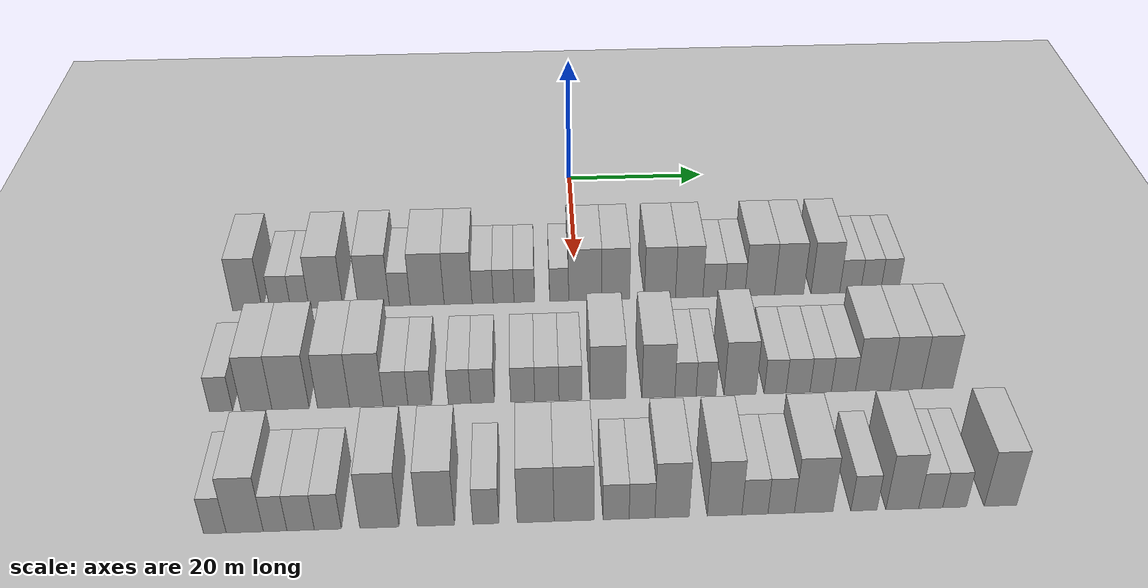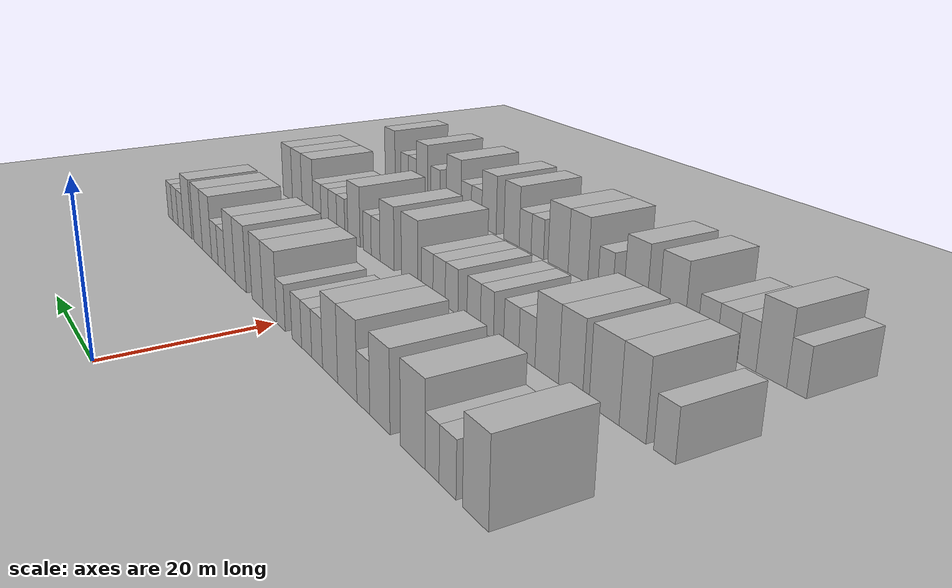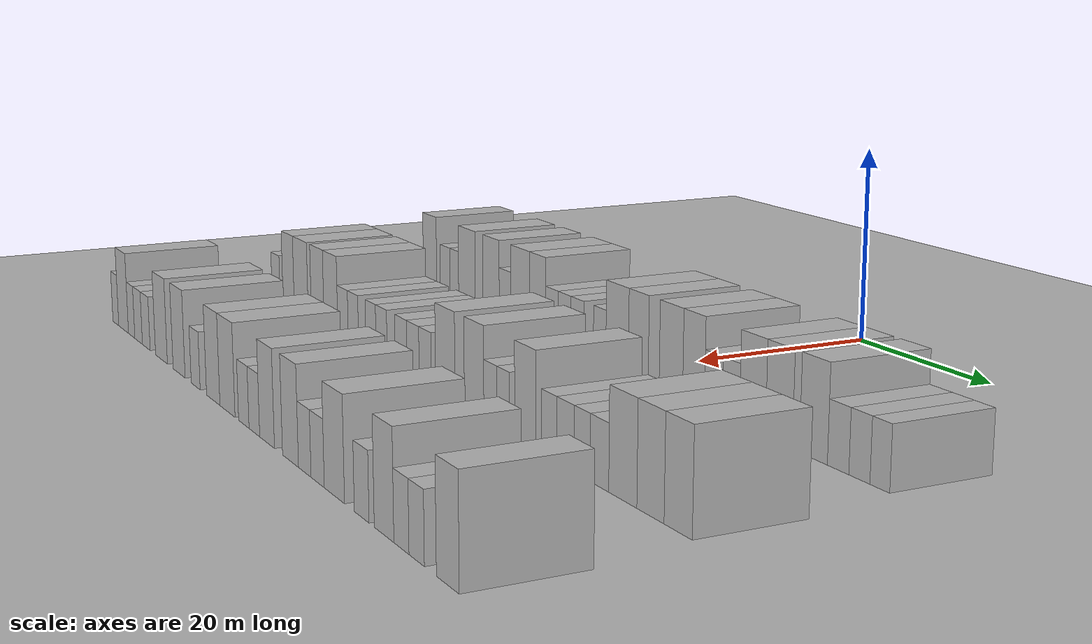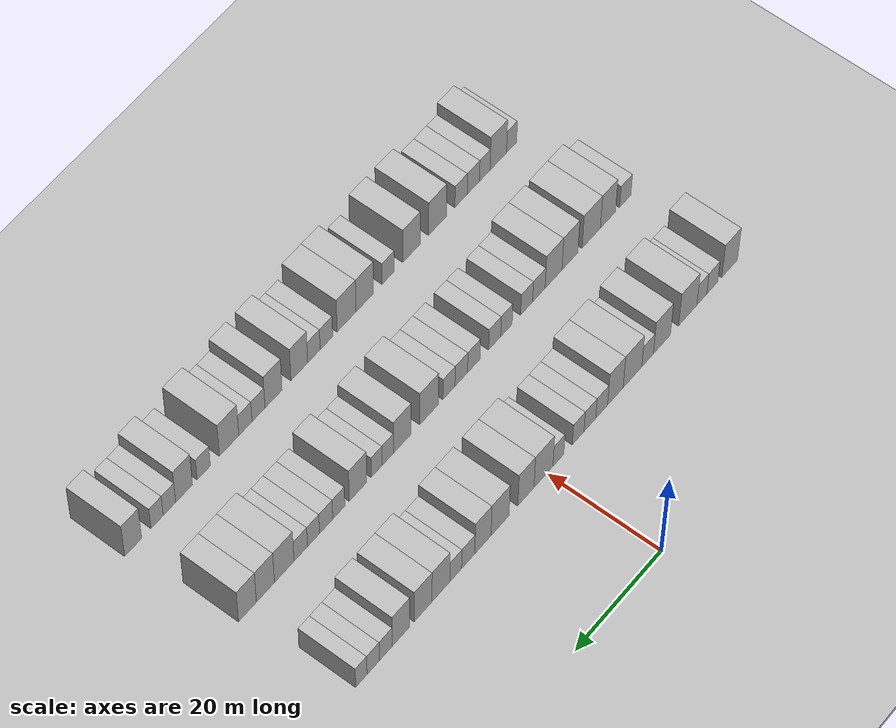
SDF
<sdf version="1.6">
 <world name="default">
  <include><name>ground_plane_1</name><uri>model://HANNAS_ground_plane</uri></include>
  <include>
   <name>ground_plane_2</name>
   <uri>model://HANNAS_ground_plane</uri>
   <pose>100 0 0  0 0 0</pose>
  </include>
  <model name="building_51">
   <static>1</static>
   <pose>25.0000 -43.5825 0 0.000000 0.000000 0.000000</pose>
   <link name="link">
    <pose>0 0 4.50 0 0 0</pose>
    <collision name="collision"><geometry><box><size>10.0000 3.8689 9.0000</size></box></geometry></collision>
    <visual name="visual">
     <cast_shadows>0</cast_shadows>
     <geometry><box><size>10.0000 3.8689 9.0000</size></box></geometry>
     <material>
      <script>
       <uri>model://HANNAS_wall/materials/scripts</uri>
       <uri>model://HANNAS_wall/materials/textures</uri>
       <name>vrc/HANNAS_wall</name>
      </script>
     </material>
    </visual>
   </link>
  </model>
  <model name="building_52">
   <static>1</static>
   <pose>25.0000 -39.2792 0 0.000000 0.000000 0.000000</pose>
   <link name="link">
    <pose>0 0 3.00 0 0 0</pose>
    <collision name="collision"><geometry><box><size>10.0000 2.7376 6.0000</size></box></geometry></collision>
    <visual name="visual">
     <cast_shadows>0</cast_shadows>
     <geometry><box><size>10.0000 2.7376 6.0000</size></box></geometry>
     <material>
      <script>
       <uri>model://HANNAS_wall/materials/scripts</uri>
       <uri>model://HANNAS_wall/materials/textures</uri>
       <name>vrc/HANNAS_wall</name>
      </script>
     </material>
    </visual>
   </link>
  </model>
  <model name="building_53">
   <static>1</static>
   <pose>25.0000 -36.7046 0 0.000000 0.000000 0.000000</pose>
   <link name="link">
    <pose>0 0 3.00 0 0 0</pose>
    <collision name="collision"><geometry><box><size>10.0000 2.4116 6.0000</size></box></geometry></collision>
    <visual name="visual">
     <cast_shadows>0</cast_shadows>
     <geometry><box><size>10.0000 2.4116 6.0000</size></box></geometry>
     <material>
      <script>
       <uri>model://HANNAS_wall/materials/scripts</uri>
       <uri>model://HANNAS_wall/materials/textures</uri>
       <name>vrc/HANNAS_wall</name>
      </script>
     </material>
    </visual>
   </link>
  </model>
  <model name="building_54">
   <static>1</static>
   <pose>25.0000 -33.2688 0 0.000000 0.000000 0.000000</pose>
   <link name="link">
    <pose>0 0 4.50 0 0 0</pose>
    <collision name="collision"><geometry><box><size>10.0000 4.4600 9.0000</size></box></geometry></collision>
    <visual name="visual">
     <cast_shadows>0</cast_shadows>
     <geometry><box><size>10.0000 4.4600 9.0000</size></box></geometry>
     <material>
      <script>
       <uri>model://HANNAS_wall/materials/scripts</uri>
       <uri>model://HANNAS_wall/materials/textures</uri>
       <name>vrc/HANNAS_wall</name>
      </script>
     </material>
    </visual>
   </link>
  </model>
  <model name="building_55">
   <static>1</static>
   <pose>25.0000 -26.9726 0 0.000000 0.000000 0.000000</pose>
   <link name="link">
    <pose>0 0 4.50 0 0 0</pose>
    <collision name="collision"><geometry><box><size>10.0000 4.1324 9.0000</size></box></geometry></collision>
    <visual name="visual">
     <cast_shadows>0</cast_shadows>
     <geometry><box><size>10.0000 4.1324 9.0000</size></box></geometry>
     <material>
      <script>
       <uri>model://HANNAS_wall/materials/scripts</uri>
       <uri>model://HANNAS_wall/materials/textures</uri>
       <name>vrc/HANNAS_wall</name>
      </script>
     </material>
    </visual>
   </link>
  </model>
  <model name="building_56">
   <static>1</static>
   <pose>25.0000 -23.5174 0 0.000000 0.000000 0.000000</pose>
   <link name="link">
    <pose>0 0 3.00 0 0 0</pose>
    <collision name="collision"><geometry><box><size>10.0000 2.7782 6.0000</size></box></geometry></collision>
    <visual name="visual">
     <cast_shadows>0</cast_shadows>
     <geometry><box><size>10.0000 2.7782 6.0000</size></box></geometry>
     <material>
      <script>
       <uri>model://HANNAS_wall/materials/scripts</uri>
       <uri>model://HANNAS_wall/materials/textures</uri>
       <name>vrc/HANNAS_wall</name>
      </script>
     </material>
    </visual>
   </link>
  </model>
  <model name="building_57">
   <static>1</static>
   <pose>25.0000 -19.8978 0 0.000000 0.000000 0.000000</pose>
   <link name="link">
    <pose>0 0 4.50 0 0 0</pose>
    <collision name="collision"><geometry><box><size>10.0000 4.4609 9.0000</size></box></geometry></collision>
    <visual name="visual">
     <cast_shadows>0</cast_shadows>
     <geometry><box><size>10.0000 4.4609 9.0000</size></box></geometry>
     <material>
      <script>
       <uri>model://HANNAS_wall/materials/scripts</uri>
       <uri>model://HANNAS_wall/materials/textures</uri>
       <name>vrc/HANNAS_wall</name>
      </script>
     </material>
    </visual>
   </link>
  </model>
  <model name="building_58">
   <static>1</static>
   <pose>25.0000 -15.8115 0 0.000000 0.000000 0.000000</pose>
   <link name="link">
    <pose>0 0 4.50 0 0 0</pose>
    <collision name="collision"><geometry><box><size>10.0000 3.7118 9.0000</size></box></geometry></collision>
    <visual name="visual">
     <cast_shadows>0</cast_shadows>
     <geometry><box><size>10.0000 3.7118 9.0000</size></box></geometry>
     <material>
      <script>
       <uri>model://HANNAS_wall/materials/scripts</uri>
       <uri>model://HANNAS_wall/materials/textures</uri>
       <name>vrc/HANNAS_wall</name>
      </script>
     </material>
    </visual>
   </link>
  </model>
  <model name="building_59">
   <static>1</static>
   <pose>25.0000 -12.5497 0 0.000000 0.000000 0.000000</pose>
   <link name="link">
    <pose>0 0 3.00 0 0 0</pose>
    <collision name="collision"><geometry><box><size>10.0000 2.8119 6.0000</size></box></geometry></collision>
    <visual name="visual">
     <cast_shadows>0</cast_shadows>
     <geometry><box><size>10.0000 2.8119 6.0000</size></box></geometry>
     <material>
      <script>
       <uri>model://HANNAS_wall/materials/scripts</uri>
       <uri>model://HANNAS_wall/materials/textures</uri>
       <name>vrc/HANNAS_wall</name>
      </script>
     </material>
    </visual>
   </link>
  </model>
  <model name="building_60">
   <static>1</static>
   <pose>25.0000 -9.7638 0 0.000000 0.000000 0.000000</pose>
   <link name="link">
    <pose>0 0 3.00 0 0 0</pose>
    <collision name="collision"><geometry><box><size>10.0000 2.7600 6.0000</size></box></geometry></collision>
    <visual name="visual">
     <cast_shadows>0</cast_shadows>
     <geometry><box><size>10.0000 2.7600 6.0000</size></box></geometry>
     <material>
      <script>
       <uri>model://HANNAS_wall/materials/scripts</uri>
       <uri>model://HANNAS_wall/materials/textures</uri>
       <name>vrc/HANNAS_wall</name>
      </script>
     </material>
    </visual>
   </link>
  </model>
  <model name="building_61">
   <static>1</static>
   <pose>25.0000 -7.0127 0 0.000000 0.000000 0.000000</pose>
   <link name="link">
    <pose>0 0 3.00 0 0 0</pose>
    <collision name="collision"><geometry><box><size>10.0000 2.7423 6.0000</size></box></geometry></collision>
    <visual name="visual">
     <cast_shadows>0</cast_shadows>
     <geometry><box><size>10.0000 2.7423 6.0000</size></box></geometry>
     <material>
      <script>
       <uri>model://HANNAS_wall/materials/scripts</uri>
       <uri>model://HANNAS_wall/materials/textures</uri>
       <name>vrc/HANNAS_wall</name>
      </script>
     </material>
    </visual>
   </link>
  </model>
  <model name="building_62">
   <static>1</static>
   <pose>25.0000 -2.3750 0 0.000000 0.000000 0.000000</pose>
   <link name="link">
    <pose>0 0 3.00 0 0 0</pose>
    <collision name="collision"><geometry><box><size>10.0000 2.5332 6.0000</size></box></geometry></collision>
    <visual name="visual">
     <cast_shadows>0</cast_shadows>
     <geometry><box><size>10.0000 2.5332 6.0000</size></box></geometry>
     <material>
      <script>
       <uri>model://HANNAS_wall/materials/scripts</uri>
       <uri>model://HANNAS_wall/materials/textures</uri>
       <name>vrc/HANNAS_wall</name>
      </script>
     </material>
    </visual>
   </link>
  </model>
  <model name="building_63">
   <static>1</static>
   <pose>25.0000 1.0939 0 0.000000 0.000000 0.000000</pose>
   <link name="link">
    <pose>0 0 4.50 0 0 0</pose>
    <collision name="collision"><geometry><box><size>10.0000 4.4045 9.0000</size></box></geometry></collision>
    <visual name="visual">
     <cast_shadows>0</cast_shadows>
     <geometry><box><size>10.0000 4.4045 9.0000</size></box></geometry>
     <material>
      <script>
       <uri>model://HANNAS_wall/materials/scripts</uri>
       <uri>model://HANNAS_wall/materials/textures</uri>
       <name>vrc/HANNAS_wall</name>
      </script>
     </material>
    </visual>
   </link>
  </model>
  <model name="building_64">
   <static>1</static>
   <pose>25.0000 5.1613 0 0.000000 0.000000 0.000000</pose>
   <link name="link">
    <pose>0 0 4.50 0 0 0</pose>
    <collision name="collision"><geometry><box><size>10.0000 3.7302 9.0000</size></box></geometry></collision>
    <visual name="visual">
     <cast_shadows>0</cast_shadows>
     <geometry><box><size>10.0000 3.7302 9.0000</size></box></geometry>
     <material>
      <script>
       <uri>model://HANNAS_wall/materials/scripts</uri>
       <uri>model://HANNAS_wall/materials/textures</uri>
       <name>vrc/HANNAS_wall</name>
      </script>
     </material>
    </visual>
   </link>
  </model>
  <model name="building_65">
   <static>1</static>
   <pose>25.0000 11.0994 0 0.000000 0.000000 0.000000</pose>
   <link name="link">
    <pose>0 0 4.50 0 0 0</pose>
    <collision name="collision"><geometry><box><size>10.0000 4.1461 9.0000</size></box></geometry></collision>
    <visual name="visual">
     <cast_shadows>0</cast_shadows>
     <geometry><box><size>10.0000 4.1461 9.0000</size></box></geometry>
     <material>
      <script>
       <uri>model://HANNAS_wall/materials/scripts</uri>
       <uri>model://HANNAS_wall/materials/textures</uri>
       <name>vrc/HANNAS_wall</name>
      </script>
     </material>
    </visual>
   </link>
  </model>
  <model name="building_66">
   <static>1</static>
   <pose>25.0000 15.0193 0 0.000000 0.000000 0.000000</pose>
   <link name="link">
    <pose>0 0 4.50 0 0 0</pose>
    <collision name="collision"><geometry><box><size>10.0000 3.6936 9.0000</size></box></geometry></collision>
    <visual name="visual">
     <cast_shadows>0</cast_shadows>
     <geometry><box><size>10.0000 3.6936 9.0000</size></box></geometry>
     <material>
      <script>
       <uri>model://HANNAS_wall/materials/scripts</uri>
       <uri>model://HANNAS_wall/materials/textures</uri>
       <name>vrc/HANNAS_wall</name>
      </script>
     </material>
    </visual>
   </link>
  </model>
  <model name="building_67">
   <static>1</static>
   <pose>25.0000 18.3414 0 0.000000 0.000000 0.000000</pose>
   <link name="link">
    <pose>0 0 3.00 0 0 0</pose>
    <collision name="collision"><geometry><box><size>10.0000 2.9506 6.0000</size></box></geometry></collision>
    <visual name="visual">
     <cast_shadows>0</cast_shadows>
     <geometry><box><size>10.0000 2.9506 6.0000</size></box></geometry>
     <material>
      <script>
       <uri>model://HANNAS_wall/materials/scripts</uri>
       <uri>model://HANNAS_wall/materials/textures</uri>
       <name>vrc/HANNAS_wall</name>
      </script>
     </material>
    </visual>
   </link>
  </model>
  <model name="building_68">
   <static>1</static>
   <pose>25.0000 21.1719 0 0.000000 0.000000 0.000000</pose>
   <link name="link">
    <pose>0 0 3.00 0 0 0</pose>
    <collision name="collision"><geometry><box><size>10.0000 2.7105 6.0000</size></box></geometry></collision>
    <visual name="visual">
     <cast_shadows>0</cast_shadows>
     <geometry><box><size>10.0000 2.7105 6.0000</size></box></geometry>
     <material>
      <script>
       <uri>model://HANNAS_wall/materials/scripts</uri>
       <uri>model://HANNAS_wall/materials/textures</uri>
       <name>vrc/HANNAS_wall</name>
      </script>
     </material>
    </visual>
   </link>
  </model>
  <model name="building_69">
   <static>1</static>
   <pose>25.0000 24.5188 0 0.000000 0.000000 0.000000</pose>
   <link name="link">
    <pose>0 0 4.50 0 0 0</pose>
    <collision name="collision"><geometry><box><size>10.0000 3.9832 9.0000</size></box></geometry></collision>
    <visual name="visual">
     <cast_shadows>0</cast_shadows>
     <geometry><box><size>10.0000 3.9832 9.0000</size></box></geometry>
     <material>
      <script>
       <uri>model://HANNAS_wall/materials/scripts</uri>
       <uri>model://HANNAS_wall/materials/textures</uri>
       <name>vrc/HANNAS_wall</name>
      </script>
     </material>
    </visual>
   </link>
  </model>
  <model name="building_70">
   <static>1</static>
   <pose>25.0000 28.4812 0 0.000000 0.000000 0.000000</pose>
   <link name="link">
    <pose>0 0 4.50 0 0 0</pose>
    <collision name="collision"><geometry><box><size>10.0000 3.9416 9.0000</size></box></geometry></collision>
    <visual name="visual">
     <cast_shadows>0</cast_shadows>
     <geometry><box><size>10.0000 3.9416 9.0000</size></box></geometry>
     <material>
      <script>
       <uri>model://HANNAS_wall/materials/scripts</uri>
       <uri>model://HANNAS_wall/materials/textures</uri>
       <name>vrc/HANNAS_wall</name>
      </script>
     </material>
    </visual>
   </link>
  </model>
  <model name="building_71">
   <static>1</static>
   <pose>25.0000 33.3857 0 0.000000 0.000000 0.000000</pose>
   <link name="link">
    <pose>0 0 4.50 0 0 0</pose>
    <collision name="collision"><geometry><box><size>10.0000 3.8675 9.0000</size></box></geometry></collision>
    <visual name="visual">
     <cast_shadows>0</cast_shadows>
     <geometry><box><size>10.0000 3.8675 9.0000</size></box></geometry>
     <material>
      <script>
       <uri>model://HANNAS_wall/materials/scripts</uri>
       <uri>model://HANNAS_wall/materials/textures</uri>
       <name>vrc/HANNAS_wall</name>
      </script>
     </material>
    </visual>
   </link>
  </model>
  <model name="building_72">
   <static>1</static>
   <pose>25.0000 36.7417 0 0.000000 0.000000 0.000000</pose>
   <link name="link">
    <pose>0 0 3.00 0 0 0</pose>
    <collision name="collision"><geometry><box><size>10.0000 2.8445 6.0000</size></box></geometry></collision>
    <visual name="visual">
     <cast_shadows>0</cast_shadows>
     <geometry><box><size>10.0000 2.8445 6.0000</size></box></geometry>
     <material>
      <script>
       <uri>model://HANNAS_wall/materials/scripts</uri>
       <uri>model://HANNAS_wall/materials/textures</uri>
       <name>vrc/HANNAS_wall</name>
      </script>
     </material>
    </visual>
   </link>
  </model>
  <model name="building_73">
   <static>1</static>
   <pose>25.0000 39.5200 0 0.000000 0.000000 0.000000</pose>
   <link name="link">
    <pose>0 0 3.00 0 0 0</pose>
    <collision name="collision"><geometry><box><size>10.0000 2.7121 6.0000</size></box></geometry></collision>
    <visual name="visual">
     <cast_shadows>0</cast_shadows>
     <geometry><box><size>10.0000 2.7121 6.0000</size></box></geometry>
     <material>
      <script>
       <uri>model://HANNAS_wall/materials/scripts</uri>
       <uri>model://HANNAS_wall/materials/textures</uri>
       <name>vrc/HANNAS_wall</name>
      </script>
     </material>
    </visual>
   </link>
  </model>
  <model name="building_74">
   <static>1</static>
   <pose>25.0000 42.1110 0 0.000000 0.000000 0.000000</pose>
   <link name="link">
    <pose>0 0 3.00 0 0 0</pose>
    <collision name="collision"><geometry><box><size>10.0000 2.4699 6.0000</size></box></geometry></collision>
    <visual name="visual">
     <cast_shadows>0</cast_shadows>
     <geometry><box><size>10.0000 2.4699 6.0000</size></box></geometry>
     <material>
      <script>
       <uri>model://HANNAS_wall/materials/scripts</uri>
       <uri>model://HANNAS_wall/materials/textures</uri>
       <name>vrc/HANNAS_wall</name>
      </script>
     </material>
    </visual>
   </link>
  </model>
  <model name="building_165">
   <static>1</static>
   <pose>44.0000 -43.6014 0 0.000000 0.000000 0.000000</pose>
   <link name="link">
    <pose>0 0 3.00 0 0 0</pose>
    <collision name="collision"><geometry><box><size>10.0000 2.7723 6.0000</size></box></geometry></collision>
    <visual name="visual">
     <cast_shadows>0</cast_shadows>
     <geometry><box><size>10.0000 2.7723 6.0000</size></box></geometry>
     <material>
      <script>
       <uri>model://HANNAS_wall/materials/scripts</uri>
       <uri>model://HANNAS_wall/materials/textures</uri>
       <name>vrc/HANNAS_wall</name>
      </script>
     </material>
    </visual>
   </link>
  </model>
  <model name="building_166">
   <static>1</static>
   <pose>44.0000 -39.3659 0 0.000000 0.000000 0.000000</pose>
   <link name="link">
    <pose>0 0 4.50 0 0 0</pose>
    <collision name="collision"><geometry><box><size>10.0000 3.6986 9.0000</size></box></geometry></collision>
    <visual name="visual">
     <cast_shadows>0</cast_shadows>
     <geometry><box><size>10.0000 3.6986 9.0000</size></box></geometry>
     <material>
      <script>
       <uri>model://HANNAS_wall/materials/scripts</uri>
       <uri>model://HANNAS_wall/materials/textures</uri>
       <name>vrc/HANNAS_wall</name>
      </script>
     </material>
    </visual>
   </link>
  </model>
  <model name="building_167">
   <static>1</static>
   <pose>44.0000 -35.2908 0 0.000000 0.000000 0.000000</pose>
   <link name="link">
    <pose>0 0 4.50 0 0 0</pose>
    <collision name="collision"><geometry><box><size>10.0000 4.4516 9.0000</size></box></geometry></collision>
    <visual name="visual">
     <cast_shadows>0</cast_shadows>
     <geometry><box><size>10.0000 4.4516 9.0000</size></box></geometry>
     <material>
      <script>
       <uri>model://HANNAS_wall/materials/scripts</uri>
       <uri>model://HANNAS_wall/materials/textures</uri>
       <name>vrc/HANNAS_wall</name>
      </script>
     </material>
    </visual>
   </link>
  </model>
  <model name="building_168">
   <static>1</static>
   <pose>44.0000 -30.1331 0 0.000000 0.000000 0.000000</pose>
   <link name="link">
    <pose>0 0 4.50 0 0 0</pose>
    <collision name="collision"><geometry><box><size>10.0000 3.8639 9.0000</size></box></geometry></collision>
    <visual name="visual">
     <cast_shadows>0</cast_shadows>
     <geometry><box><size>10.0000 3.8639 9.0000</size></box></geometry>
     <material>
      <script>
       <uri>model://HANNAS_wall/materials/scripts</uri>
       <uri>model://HANNAS_wall/materials/textures</uri>
       <name>vrc/HANNAS_wall</name>
      </script>
     </material>
    </visual>
   </link>
  </model>
  <model name="building_169">
   <static>1</static>
   <pose>44.0000 -26.1738 0 0.000000 0.000000 0.000000</pose>
   <link name="link">
    <pose>0 0 4.50 0 0 0</pose>
    <collision name="collision"><geometry><box><size>10.0000 4.0548 9.0000</size></box></geometry></collision>
    <visual name="visual">
     <cast_shadows>0</cast_shadows>
     <geometry><box><size>10.0000 4.0548 9.0000</size></box></geometry>
     <material>
      <script>
       <uri>model://HANNAS_wall/materials/scripts</uri>
       <uri>model://HANNAS_wall/materials/textures</uri>
       <name>vrc/HANNAS_wall</name>
      </script>
     </material>
    </visual>
   </link>
  </model>
  <model name="building_170">
   <static>1</static>
   <pose>44.0000 -22.6644 0 0.000000 0.000000 0.000000</pose>
   <link name="link">
    <pose>0 0 3.00 0 0 0</pose>
    <collision name="collision"><geometry><box><size>10.0000 2.9638 6.0000</size></box></geometry></collision>
    <visual name="visual">
     <cast_shadows>0</cast_shadows>
     <geometry><box><size>10.0000 2.9638 6.0000</size></box></geometry>
     <material>
      <script>
       <uri>model://HANNAS_wall/materials/scripts</uri>
       <uri>model://HANNAS_wall/materials/textures</uri>
       <name>vrc/HANNAS_wall</name>
      </script>
     </material>
    </visual>
   </link>
  </model>
  <model name="building_171">
   <static>1</static>
   <pose>44.0000 -19.7495 0 0.000000 0.000000 0.000000</pose>
   <link name="link">
    <pose>0 0 3.00 0 0 0</pose>
    <collision name="collision"><geometry><box><size>10.0000 2.8661 6.0000</size></box></geometry></collision>
    <visual name="visual">
     <cast_shadows>0</cast_shadows>
     <geometry><box><size>10.0000 2.8661 6.0000</size></box></geometry>
     <material>
      <script>
       <uri>model://HANNAS_wall/materials/scripts</uri>
       <uri>model://HANNAS_wall/materials/textures</uri>
       <name>vrc/HANNAS_wall</name>
      </script>
     </material>
    </visual>
   </link>
  </model>
  <model name="building_172">
   <static>1</static>
   <pose>44.0000 -14.9637 0 0.000000 0.000000 0.000000</pose>
   <link name="link">
    <pose>0 0 3.00 0 0 0</pose>
    <collision name="collision"><geometry><box><size>10.0000 2.7054 6.0000</size></box></geometry></collision>
    <visual name="visual">
     <cast_shadows>0</cast_shadows>
     <geometry><box><size>10.0000 2.7054 6.0000</size></box></geometry>
     <material>
      <script>
       <uri>model://HANNAS_wall/materials/scripts</uri>
       <uri>model://HANNAS_wall/materials/textures</uri>
       <name>vrc/HANNAS_wall</name>
      </script>
     </material>
    </visual>
   </link>
  </model>
  <model name="building_173">
   <static>1</static>
   <pose>44.0000 -12.1820 0 0.000000 0.000000 0.000000</pose>
   <link name="link">
    <pose>0 0 3.00 0 0 0</pose>
    <collision name="collision"><geometry><box><size>10.0000 2.8579 6.0000</size></box></geometry></collision>
    <visual name="visual">
     <cast_shadows>0</cast_shadows>
     <geometry><box><size>10.0000 2.8579 6.0000</size></box></geometry>
     <material>
      <script>
       <uri>model://HANNAS_wall/materials/scripts</uri>
       <uri>model://HANNAS_wall/materials/textures</uri>
       <name>vrc/HANNAS_wall</name>
      </script>
     </material>
    </visual>
   </link>
  </model>
  <model name="building_174">
   <static>1</static>
   <pose>44.0000 -7.3008 0 0.000000 0.000000 0.000000</pose>
   <link name="link">
    <pose>0 0 3.00 0 0 0</pose>
    <collision name="collision"><geometry><box><size>10.0000 2.9045 6.0000</size></box></geometry></collision>
    <visual name="visual">
     <cast_shadows>0</cast_shadows>
     <geometry><box><size>10.0000 2.9045 6.0000</size></box></geometry>
     <material>
      <script>
       <uri>model://HANNAS_wall/materials/scripts</uri>
       <uri>model://HANNAS_wall/materials/textures</uri>
       <name>vrc/HANNAS_wall</name>
      </script>
     </material>
    </visual>
   </link>
  </model>
  <model name="building_175">
   <static>1</static>
   <pose>44.0000 -4.3817 0 0.000000 0.000000 0.000000</pose>
   <link name="link">
    <pose>0 0 3.00 0 0 0</pose>
    <collision name="collision"><geometry><box><size>10.0000 2.9337 6.0000</size></box></geometry></collision>
    <visual name="visual">
     <cast_shadows>0</cast_shadows>
     <geometry><box><size>10.0000 2.9337 6.0000</size></box></geometry>
     <material>
      <script>
       <uri>model://HANNAS_wall/materials/scripts</uri>
       <uri>model://HANNAS_wall/materials/textures</uri>
       <name>vrc/HANNAS_wall</name>
      </script>
     </material>
    </visual>
   </link>
  </model>
  <model name="building_176">
   <static>1</static>
   <pose>44.0000 -1.5160 0 0.000000 0.000000 0.000000</pose>
   <link name="link">
    <pose>0 0 3.00 0 0 0</pose>
    <collision name="collision"><geometry><box><size>10.0000 2.7977 6.0000</size></box></geometry></collision>
    <visual name="visual">
     <cast_shadows>0</cast_shadows>
     <geometry><box><size>10.0000 2.7977 6.0000</size></box></geometry>
     <material>
      <script>
       <uri>model://HANNAS_wall/materials/scripts</uri>
       <uri>model://HANNAS_wall/materials/textures</uri>
       <name>vrc/HANNAS_wall</name>
      </script>
     </material>
    </visual>
   </link>
  </model>
  <model name="building_177">
   <static>1</static>
   <pose>44.0000 3.0311 0 0.000000 0.000000 0.000000</pose>
   <link name="link">
    <pose>0 0 4.50 0 0 0</pose>
    <collision name="collision"><geometry><box><size>10.0000 4.2965 9.0000</size></box></geometry></collision>
    <visual name="visual">
     <cast_shadows>0</cast_shadows>
     <geometry><box><size>10.0000 4.2965 9.0000</size></box></geometry>
     <material>
      <script>
       <uri>model://HANNAS_wall/materials/scripts</uri>
       <uri>model://HANNAS_wall/materials/textures</uri>
       <name>vrc/HANNAS_wall</name>
      </script>
     </material>
    </visual>
   </link>
  </model>
  <model name="building_178">
   <static>1</static>
   <pose>44.0000 9.1933 0 0.000000 0.000000 0.000000</pose>
   <link name="link">
    <pose>0 0 4.50 0 0 0</pose>
    <collision name="collision"><geometry><box><size>10.0000 4.0280 9.0000</size></box></geometry></collision>
    <visual name="visual">
     <cast_shadows>0</cast_shadows>
     <geometry><box><size>10.0000 4.0280 9.0000</size></box></geometry>
     <material>
      <script>
       <uri>model://HANNAS_wall/materials/scripts</uri>
       <uri>model://HANNAS_wall/materials/textures</uri>
       <name>vrc/HANNAS_wall</name>
      </script>
     </material>
    </visual>
   </link>
  </model>
  <model name="building_179">
   <static>1</static>
   <pose>44.0000 12.5061 0 0.000000 0.000000 0.000000</pose>
   <link name="link">
    <pose>0 0 3.00 0 0 0</pose>
    <collision name="collision"><geometry><box><size>10.0000 2.5975 6.0000</size></box></geometry></collision>
    <visual name="visual">
     <cast_shadows>0</cast_shadows>
     <geometry><box><size>10.0000 2.5975 6.0000</size></box></geometry>
     <material>
      <script>
       <uri>model://HANNAS_wall/materials/scripts</uri>
       <uri>model://HANNAS_wall/materials/textures</uri>
       <name>vrc/HANNAS_wall</name>
      </script>
     </material>
    </visual>
   </link>
  </model>
  <model name="building_180">
   <static>1</static>
   <pose>44.0000 15.0234 0 0.000000 0.000000 0.000000</pose>
   <link name="link">
    <pose>0 0 3.00 0 0 0</pose>
    <collision name="collision"><geometry><box><size>10.0000 2.4371 6.0000</size></box></geometry></collision>
    <visual name="visual">
     <cast_shadows>0</cast_shadows>
     <geometry><box><size>10.0000 2.4371 6.0000</size></box></geometry>
     <material>
      <script>
       <uri>model://HANNAS_wall/materials/scripts</uri>
       <uri>model://HANNAS_wall/materials/textures</uri>
       <name>vrc/HANNAS_wall</name>
      </script>
     </material>
    </visual>
   </link>
  </model>
  <model name="building_181">
   <static>1</static>
   <pose>44.0000 19.2070 0 0.000000 0.000000 0.000000</pose>
   <link name="link">
    <pose>0 0 4.50 0 0 0</pose>
    <collision name="collision"><geometry><box><size>10.0000 3.9302 9.0000</size></box></geometry></collision>
    <visual name="visual">
     <cast_shadows>0</cast_shadows>
     <geometry><box><size>10.0000 3.9302 9.0000</size></box></geometry>
     <material>
      <script>
       <uri>model://HANNAS_wall/materials/scripts</uri>
       <uri>model://HANNAS_wall/materials/textures</uri>
       <name>vrc/HANNAS_wall</name>
      </script>
     </material>
    </visual>
   </link>
  </model>
  <model name="building_182">
   <static>1</static>
   <pose>44.0000 23.5133 0 0.000000 0.000000 0.000000</pose>
   <link name="link">
    <pose>0 0 3.00 0 0 0</pose>
    <collision name="collision"><geometry><box><size>10.0000 2.6823 6.0000</size></box></geometry></collision>
    <visual name="visual">
     <cast_shadows>0</cast_shadows>
     <geometry><box><size>10.0000 2.6823 6.0000</size></box></geometry>
     <material>
      <script>
       <uri>model://HANNAS_wall/materials/scripts</uri>
       <uri>model://HANNAS_wall/materials/textures</uri>
       <name>vrc/HANNAS_wall</name>
      </script>
     </material>
    </visual>
   </link>
  </model>
  <model name="building_183">
   <static>1</static>
   <pose>44.0000 26.3261 0 0.000000 0.000000 0.000000</pose>
   <link name="link">
    <pose>0 0 3.00 0 0 0</pose>
    <collision name="collision"><geometry><box><size>10.0000 2.9435 6.0000</size></box></geometry></collision>
    <visual name="visual">
     <cast_shadows>0</cast_shadows>
     <geometry><box><size>10.0000 2.9435 6.0000</size></box></geometry>
     <material>
      <script>
       <uri>model://HANNAS_wall/materials/scripts</uri>
       <uri>model://HANNAS_wall/materials/textures</uri>
       <name>vrc/HANNAS_wall</name>
      </script>
     </material>
    </visual>
   </link>
  </model>
  <model name="building_184">
   <static>1</static>
   <pose>44.0000 29.1222 0 0.000000 0.000000 0.000000</pose>
   <link name="link">
    <pose>0 0 3.00 0 0 0</pose>
    <collision name="collision"><geometry><box><size>10.0000 2.6488 6.0000</size></box></geometry></collision>
    <visual name="visual">
     <cast_shadows>0</cast_shadows>
     <geometry><box><size>10.0000 2.6488 6.0000</size></box></geometry>
     <material>
      <script>
       <uri>model://HANNAS_wall/materials/scripts</uri>
       <uri>model://HANNAS_wall/materials/textures</uri>
       <name>vrc/HANNAS_wall</name>
      </script>
     </material>
    </visual>
   </link>
  </model>
  <model name="building_185">
   <static>1</static>
   <pose>44.0000 31.9396 0 0.000000 0.000000 0.000000</pose>
   <link name="link">
    <pose>0 0 3.00 0 0 0</pose>
    <collision name="collision"><geometry><box><size>10.0000 2.9860 6.0000</size></box></geometry></collision>
    <visual name="visual">
     <cast_shadows>0</cast_shadows>
     <geometry><box><size>10.0000 2.9860 6.0000</size></box></geometry>
     <material>
      <script>
       <uri>model://HANNAS_wall/materials/scripts</uri>
       <uri>model://HANNAS_wall/materials/textures</uri>
       <name>vrc/HANNAS_wall</name>
      </script>
     </material>
    </visual>
   </link>
  </model>
  <model name="building_186">
   <static>1</static>
   <pose>44.0000 35.5728 0 0.000000 0.000000 0.000000</pose>
   <link name="link">
    <pose>0 0 4.50 0 0 0</pose>
    <collision name="collision"><geometry><box><size>10.0000 4.2803 9.0000</size></box></geometry></collision>
    <visual name="visual">
     <cast_shadows>0</cast_shadows>
     <geometry><box><size>10.0000 4.2803 9.0000</size></box></geometry>
     <material>
      <script>
       <uri>model://HANNAS_wall/materials/scripts</uri>
       <uri>model://HANNAS_wall/materials/textures</uri>
       <name>vrc/HANNAS_wall</name>
      </script>
     </material>
    </visual>
   </link>
  </model>
  <model name="building_187">
   <static>1</static>
   <pose>44.0000 39.6772 0 0.000000 0.000000 0.000000</pose>
   <link name="link">
    <pose>0 0 4.50 0 0 0</pose>
    <collision name="collision"><geometry><box><size>10.0000 3.9285 9.0000</size></box></geometry></collision>
    <visual name="visual">
     <cast_shadows>0</cast_shadows>
     <geometry><box><size>10.0000 3.9285 9.0000</size></box></geometry>
     <material>
      <script>
       <uri>model://HANNAS_wall/materials/scripts</uri>
       <uri>model://HANNAS_wall/materials/textures</uri>
       <name>vrc/HANNAS_wall</name>
      </script>
     </material>
    </visual>
   </link>
  </model>
  <model name="building_188">
   <static>1</static>
   <pose>44.0000 43.5784 0 0.000000 0.000000 0.000000</pose>
   <link name="link">
    <pose>0 0 4.50 0 0 0</pose>
    <collision name="collision"><geometry><box><size>10.0000 3.8738 9.0000</size></box></geometry></collision>
    <visual name="visual">
     <cast_shadows>0</cast_shadows>
     <geometry><box><size>10.0000 3.8738 9.0000</size></box></geometry>
     <material>
      <script>
       <uri>model://HANNAS_wall/materials/scripts</uri>
       <uri>model://HANNAS_wall/materials/textures</uri>
       <name>vrc/HANNAS_wall</name>
      </script>
     </material>
    </visual>
   </link>
  </model>
  <model name="building_280">
   <static>1</static>
   <pose>63.0000 -40.8225 0 0.000000 0.000000 0.000000</pose>
   <link name="link">
    <pose>0 0 3.00 0 0 0</pose>
    <collision name="collision"><geometry><box><size>10.0000 2.4393 6.0000</size></box></geometry></collision>
    <visual name="visual">
     <cast_shadows>0</cast_shadows>
     <geometry><box><size>10.0000 2.4393 6.0000</size></box></geometry>
     <material>
      <script>
       <uri>model://HANNAS_wall/materials/scripts</uri>
       <uri>model://HANNAS_wall/materials/textures</uri>
       <name>vrc/HANNAS_wall</name>
      </script>
     </material>
    </visual>
   </link>
  </model>
  <model name="building_281">
   <static>1</static>
   <pose>63.0000 -37.6006 0 0.000000 0.000000 0.000000</pose>
   <link name="link">
    <pose>0 0 4.50 0 0 0</pose>
    <collision name="collision"><geometry><box><size>10.0000 4.0046 9.0000</size></box></geometry></collision>
    <visual name="visual">
     <cast_shadows>0</cast_shadows>
     <geometry><box><size>10.0000 4.0046 9.0000</size></box></geometry>
     <material>
      <script>
       <uri>model://HANNAS_wall/materials/scripts</uri>
       <uri>model://HANNAS_wall/materials/textures</uri>
       <name>vrc/HANNAS_wall</name>
      </script>
     </material>
    </visual>
   </link>
  </model>
  <model name="building_282">
   <static>1</static>
   <pose>63.0000 -34.3244 0 0.000000 0.000000 0.000000</pose>
   <link name="link">
    <pose>0 0 3.00 0 0 0</pose>
    <collision name="collision"><geometry><box><size>10.0000 2.5477 6.0000</size></box></geometry></collision>
    <visual name="visual">
     <cast_shadows>0</cast_shadows>
     <geometry><box><size>10.0000 2.5477 6.0000</size></box></geometry>
     <material>
      <script>
       <uri>model://HANNAS_wall/materials/scripts</uri>
       <uri>model://HANNAS_wall/materials/textures</uri>
       <name>vrc/HANNAS_wall</name>
      </script>
     </material>
    </visual>
   </link>
  </model>
  <model name="building_283">
   <static>1</static>
   <pose>63.0000 -31.5729 0 0.000000 0.000000 0.000000</pose>
   <link name="link">
    <pose>0 0 3.00 0 0 0</pose>
    <collision name="collision"><geometry><box><size>10.0000 2.9552 6.0000</size></box></geometry></collision>
    <visual name="visual">
     <cast_shadows>0</cast_shadows>
     <geometry><box><size>10.0000 2.9552 6.0000</size></box></geometry>
     <material>
      <script>
       <uri>model://HANNAS_wall/materials/scripts</uri>
       <uri>model://HANNAS_wall/materials/textures</uri>
       <name>vrc/HANNAS_wall</name>
      </script>
     </material>
    </visual>
   </link>
  </model>
  <model name="building_284">
   <static>1</static>
   <pose>63.0000 -28.6274 0 0.000000 0.000000 0.000000</pose>
   <link name="link">
    <pose>0 0 3.00 0 0 0</pose>
    <collision name="collision"><geometry><box><size>10.0000 2.9360 6.0000</size></box></geometry></collision>
    <visual name="visual">
     <cast_shadows>0</cast_shadows>
     <geometry><box><size>10.0000 2.9360 6.0000</size></box></geometry>
     <material>
      <script>
       <uri>model://HANNAS_wall/materials/scripts</uri>
       <uri>model://HANNAS_wall/materials/textures</uri>
       <name>vrc/HANNAS_wall</name>
      </script>
     </material>
    </visual>
   </link>
  </model>
  <model name="building_285">
   <static>1</static>
   <pose>63.0000 -23.0329 0 0.000000 0.000000 0.000000</pose>
   <link name="link">
    <pose>0 0 4.50 0 0 0</pose>
    <collision name="collision"><geometry><box><size>10.0000 4.2528 9.0000</size></box></geometry></collision>
    <visual name="visual">
     <cast_shadows>0</cast_shadows>
     <geometry><box><size>10.0000 4.2528 9.0000</size></box></geometry>
     <material>
      <script>
       <uri>model://HANNAS_wall/materials/scripts</uri>
       <uri>model://HANNAS_wall/materials/textures</uri>
       <name>vrc/HANNAS_wall</name>
      </script>
     </material>
    </visual>
   </link>
  </model>
  <model name="building_286">
   <static>1</static>
   <pose>63.0000 -16.8805 0 0.000000 0.000000 0.000000</pose>
   <link name="link">
    <pose>0 0 4.50 0 0 0</pose>
    <collision name="collision"><geometry><box><size>10.0000 4.0520 9.0000</size></box></geometry></collision>
    <visual name="visual">
     <cast_shadows>0</cast_shadows>
     <geometry><box><size>10.0000 4.0520 9.0000</size></box></geometry>
     <material>
      <script>
       <uri>model://HANNAS_wall/materials/scripts</uri>
       <uri>model://HANNAS_wall/materials/textures</uri>
       <name>vrc/HANNAS_wall</name>
      </script>
     </material>
    </visual>
   </link>
  </model>
  <model name="building_287">
   <static>1</static>
   <pose>63.0000 -11.4254 0 0.000000 0.000000 0.000000</pose>
   <link name="link">
    <pose>0 0 3.00 0 0 0</pose>
    <collision name="collision"><geometry><box><size>10.0000 2.8584 6.0000</size></box></geometry></collision>
    <visual name="visual">
     <cast_shadows>0</cast_shadows>
     <geometry><box><size>10.0000 2.8584 6.0000</size></box></geometry>
     <material>
      <script>
       <uri>model://HANNAS_wall/materials/scripts</uri>
       <uri>model://HANNAS_wall/materials/textures</uri>
       <name>vrc/HANNAS_wall</name>
      </script>
     </material>
    </visual>
   </link>
  </model>
  <model name="building_288">
   <static>1</static>
   <pose>63.0000 -5.9745 0 0.000000 0.000000 0.000000</pose>
   <link name="link">
    <pose>0 0 4.50 0 0 0</pose>
    <collision name="collision"><geometry><box><size>10.0000 4.0434 9.0000</size></box></geometry></collision>
    <visual name="visual">
     <cast_shadows>0</cast_shadows>
     <geometry><box><size>10.0000 4.0434 9.0000</size></box></geometry>
     <material>
      <script>
       <uri>model://HANNAS_wall/materials/scripts</uri>
       <uri>model://HANNAS_wall/materials/textures</uri>
       <name>vrc/HANNAS_wall</name>
      </script>
     </material>
    </visual>
   </link>
  </model>
  <model name="building_289">
   <static>1</static>
   <pose>63.0000 -1.7672 0 0.000000 0.000000 0.000000</pose>
   <link name="link">
    <pose>0 0 4.50 0 0 0</pose>
    <collision name="collision"><geometry><box><size>10.0000 4.3713 9.0000</size></box></geometry></collision>
    <visual name="visual">
     <cast_shadows>0</cast_shadows>
     <geometry><box><size>10.0000 4.3713 9.0000</size></box></geometry>
     <material>
      <script>
       <uri>model://HANNAS_wall/materials/scripts</uri>
       <uri>model://HANNAS_wall/materials/textures</uri>
       <name>vrc/HANNAS_wall</name>
      </script>
     </material>
    </visual>
   </link>
  </model>
  <model name="building_290">
   <static>1</static>
   <pose>63.0000 2.8512 0 0.000000 0.000000 0.000000</pose>
   <link name="link">
    <pose>0 0 3.00 0 0 0</pose>
    <collision name="collision"><geometry><box><size>10.0000 2.8655 6.0000</size></box></geometry></collision>
    <visual name="visual">
     <cast_shadows>0</cast_shadows>
     <geometry><box><size>10.0000 2.8655 6.0000</size></box></geometry>
     <material>
      <script>
       <uri>model://HANNAS_wall/materials/scripts</uri>
       <uri>model://HANNAS_wall/materials/textures</uri>
       <name>vrc/HANNAS_wall</name>
      </script>
     </material>
    </visual>
   </link>
  </model>
  <model name="building_291">
   <static>1</static>
   <pose>63.0000 5.7065 0 0.000000 0.000000 0.000000</pose>
   <link name="link">
    <pose>0 0 3.00 0 0 0</pose>
    <collision name="collision"><geometry><box><size>10.0000 2.8450 6.0000</size></box></geometry></collision>
    <visual name="visual">
     <cast_shadows>0</cast_shadows>
     <geometry><box><size>10.0000 2.8450 6.0000</size></box></geometry>
     <material>
      <script>
       <uri>model://HANNAS_wall/materials/scripts</uri>
       <uri>model://HANNAS_wall/materials/textures</uri>
       <name>vrc/HANNAS_wall</name>
      </script>
     </material>
    </visual>
   </link>
  </model>
  <model name="building_292">
   <static>1</static>
   <pose>63.0000 9.0236 0 0.000000 0.000000 0.000000</pose>
   <link name="link">
    <pose>0 0 4.50 0 0 0</pose>
    <collision name="collision"><geometry><box><size>10.0000 3.7893 9.0000</size></box></geometry></collision>
    <visual name="visual">
     <cast_shadows>0</cast_shadows>
     <geometry><box><size>10.0000 3.7893 9.0000</size></box></geometry>
     <material>
      <script>
       <uri>model://HANNAS_wall/materials/scripts</uri>
       <uri>model://HANNAS_wall/materials/textures</uri>
       <name>vrc/HANNAS_wall</name>
      </script>
     </material>
    </visual>
   </link>
  </model>
  <model name="building_293">
   <static>1</static>
   <pose>63.0000 14.8316 0 0.000000 0.000000 0.000000</pose>
   <link name="link">
    <pose>0 0 4.50 0 0 0</pose>
    <collision name="collision"><geometry><box><size>10.0000 3.8266 9.0000</size></box></geometry></collision>
    <visual name="visual">
     <cast_shadows>0</cast_shadows>
     <geometry><box><size>10.0000 3.8266 9.0000</size></box></geometry>
     <material>
      <script>
       <uri>model://HANNAS_wall/materials/scripts</uri>
       <uri>model://HANNAS_wall/materials/textures</uri>
       <name>vrc/HANNAS_wall</name>
      </script>
     </material>
    </visual>
   </link>
  </model>
  <model name="building_294">
   <static>1</static>
   <pose>63.0000 18.1919 0 0.000000 0.000000 0.000000</pose>
   <link name="link">
    <pose>0 0 3.00 0 0 0</pose>
    <collision name="collision"><geometry><box><size>10.0000 2.8942 6.0000</size></box></geometry></collision>
    <visual name="visual">
     <cast_shadows>0</cast_shadows>
     <geometry><box><size>10.0000 2.8942 6.0000</size></box></geometry>
     <material>
      <script>
       <uri>model://HANNAS_wall/materials/scripts</uri>
       <uri>model://HANNAS_wall/materials/textures</uri>
       <name>vrc/HANNAS_wall</name>
      </script>
     </material>
    </visual>
   </link>
  </model>
  <model name="building_295">
   <static>1</static>
   <pose>63.0000 21.1120 0 0.000000 0.000000 0.000000</pose>
   <link name="link">
    <pose>0 0 3.00 0 0 0</pose>
    <collision name="collision"><geometry><box><size>10.0000 2.9461 6.0000</size></box></geometry></collision>
    <visual name="visual">
     <cast_shadows>0</cast_shadows>
     <geometry><box><size>10.0000 2.9461 6.0000</size></box></geometry>
     <material>
      <script>
       <uri>model://HANNAS_wall/materials/scripts</uri>
       <uri>model://HANNAS_wall/materials/textures</uri>
       <name>vrc/HANNAS_wall</name>
      </script>
     </material>
    </visual>
   </link>
  </model>
  <model name="building_296">
   <static>1</static>
   <pose>63.0000 24.7312 0 0.000000 0.000000 0.000000</pose>
   <link name="link">
    <pose>0 0 4.50 0 0 0</pose>
    <collision name="collision"><geometry><box><size>10.0000 4.2922 9.0000</size></box></geometry></collision>
    <visual name="visual">
     <cast_shadows>0</cast_shadows>
     <geometry><box><size>10.0000 4.2922 9.0000</size></box></geometry>
     <material>
      <script>
       <uri>model://HANNAS_wall/materials/scripts</uri>
       <uri>model://HANNAS_wall/materials/textures</uri>
       <name>vrc/HANNAS_wall</name>
      </script>
     </material>
    </visual>
   </link>
  </model>
  <model name="building_297">
   <static>1</static>
   <pose>63.0000 30.3342 0 0.000000 0.000000 0.000000</pose>
   <link name="link">
    <pose>0 0 3.00 0 0 0</pose>
    <collision name="collision"><geometry><box><size>10.0000 2.9138 6.0000</size></box></geometry></collision>
    <visual name="visual">
     <cast_shadows>0</cast_shadows>
     <geometry><box><size>10.0000 2.9138 6.0000</size></box></geometry>
     <material>
      <script>
       <uri>model://HANNAS_wall/materials/scripts</uri>
       <uri>model://HANNAS_wall/materials/textures</uri>
       <name>vrc/HANNAS_wall</name>
      </script>
     </material>
    </visual>
   </link>
  </model>
  <model name="building_298">
   <static>1</static>
   <pose>63.0000 34.6255 0 0.000000 0.000000 0.000000</pose>
   <link name="link">
    <pose>0 0 4.50 0 0 0</pose>
    <collision name="collision"><geometry><box><size>10.0000 3.6689 9.0000</size></box></geometry></collision>
    <visual name="visual">
     <cast_shadows>0</cast_shadows>
     <geometry><box><size>10.0000 3.6689 9.0000</size></box></geometry>
     <material>
      <script>
       <uri>model://HANNAS_wall/materials/scripts</uri>
       <uri>model://HANNAS_wall/materials/textures</uri>
       <name>vrc/HANNAS_wall</name>
      </script>
     </material>
    </visual>
   </link>
  </model>
  <model name="building_299">
   <static>1</static>
   <pose>63.0000 37.8111 0 0.000000 0.000000 0.000000</pose>
   <link name="link">
    <pose>0 0 3.00 0 0 0</pose>
    <collision name="collision"><geometry><box><size>10.0000 2.7023 6.0000</size></box></geometry></collision>
    <visual name="visual">
     <cast_shadows>0</cast_shadows>
     <geometry><box><size>10.0000 2.7023 6.0000</size></box></geometry>
     <material>
      <script>
       <uri>model://HANNAS_wall/materials/scripts</uri>
       <uri>model://HANNAS_wall/materials/textures</uri>
       <name>vrc/HANNAS_wall</name>
      </script>
     </material>
    </visual>
   </link>
  </model>
  <model name="building_300">
   <static>1</static>
   <pose>63.0000 40.4901 0 0.000000 0.000000 0.000000</pose>
   <link name="link">
    <pose>0 0 3.00 0 0 0</pose>
    <collision name="collision"><geometry><box><size>10.0000 2.6557 6.0000</size></box></geometry></collision>
    <visual name="visual">
     <cast_shadows>0</cast_shadows>
     <geometry><box><size>10.0000 2.6557 6.0000</size></box></geometry>
     <material>
      <script>
       <uri>model://HANNAS_wall/materials/scripts</uri>
       <uri>model://HANNAS_wall/materials/textures</uri>
       <name>vrc/HANNAS_wall</name>
      </script>
     </material>
    </visual>
   </link>
  </model>
  <model name="building_301">
   <static>1</static>
   <pose>63.0000 45.6496 0 0.000000 0.000000 0.000000</pose>
   <link name="link">
    <pose>0 0 4.50 0 0 0</pose>
    <collision name="collision"><geometry><box><size>10.0000 3.6632 9.0000</size></box></geometry></collision>
    <visual name="visual">
     <cast_shadows>0</cast_shadows>
     <geometry><box><size>10.0000 3.6632 9.0000</size></box></geometry>
     <material>
      <script>
       <uri>model://HANNAS_wall/materials/scripts</uri>
       <uri>model://HANNAS_wall/materials/textures</uri>
       <name>vrc/HANNAS_wall</name>
      </script>
     </material>
    </visual>
   </link>
  </model>
 </world>
</sdf>
